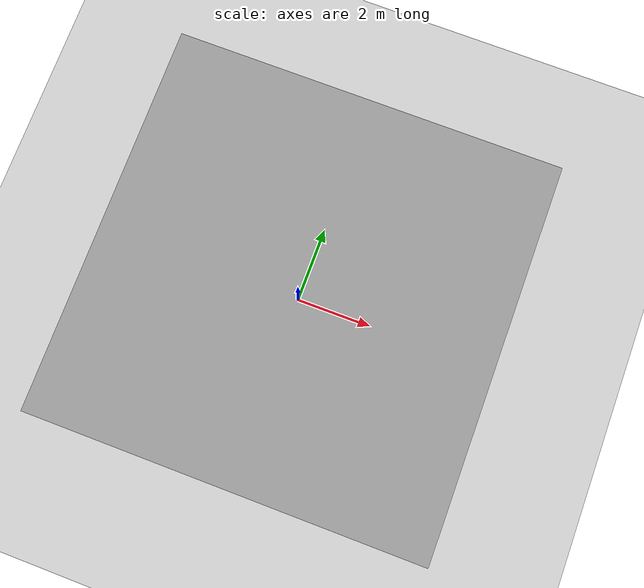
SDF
<?xml version="1.0" encoding="UTF-8"?>
<sdf version="1.9">
  <world name="ceiling">
    <physics type="ode">
      <max_step_size>0.004</max_step_size>
      <real_time_factor>1.0</real_time_factor>
      <real_time_update_rate>250</real_time_update_rate>
    </physics>
    <gravity>0 0 -9.8</gravity>
    <magnetic_field>6e-06 2.3e-05 -4.2e-05</magnetic_field>
    <atmosphere type="adiabatic"/>
    <scene>
      <grid>false</grid>
      <ambient>0.4 0.4 0.4 1</ambient>
      <background>0.7 0.7 0.7 1</background>
      <shadows>true</shadows>
    </scene>
    <model name="ground_plane">
      <static>true</static>
      <link name="link">
        <collision name="collision">
          <geometry>
            <plane>
              <normal>0 0 1</normal>
              <size>1 1</size>
            </plane>
          </geometry>
          <surface>
            <friction>
              <ode/>
            </friction>
            <bounce/>
            <contact/>
          </surface>
        </collision>
        <visual name="visual">
          <geometry>
            <plane>
              <normal>0 0 1</normal>
              <size>500 500</size>
            </plane>
          </geometry>
          <material>
            <ambient>0.8 0.8 0.8 1</ambient>
            <diffuse>0.8 0.8 0.8 1</diffuse>
            <specular>0.8 0.8 0.8 1</specular>
          </material>
        </visual>
        <pose>0 0 0 0 -0 0</pose>
        <inertial>
          <pose>0 0 0 0 -0 0</pose>
          <mass>1</mass>
          <inertia>
            <ixx>1</ixx>
            <ixy>0</ixy>
            <ixz>0</ixz>
            <iyy>1</iyy>
            <iyz>0</iyz>
            <izz>1</izz>
          </inertia>
        </inertial>
        <enable_wind>false</enable_wind>
      </link>
      <pose>0 0 0 0 -0 0</pose>
      <self_collide>false</self_collide>
    </model>

    <!-- 天花板：10×10×0.1 m，下表面落在 z=2.0，高摩擦 μ=0.9 供轮子贴顶移动 -->
    <model name="ceiling">
      <static>true</static>
      <link name="link">
        <collision name="collision">
          <geometry>
            <box>
              <size>10 10 0.1</size>
            </box>
          </geometry>
          <surface>
            <friction>
              <ode>
                <mu>0.9</mu>
                <mu2>0.9</mu2>
                <slip1>0.0</slip1>
                <slip2>0.0</slip2>
              </ode>
            </friction>
            <contact>
              <ode>
                <min_depth>0.001</min_depth>
                <max_vel>0</max_vel>
              </ode>
            </contact>
          </surface>
        </collision>
        <visual name="visual">
          <geometry>
            <box>
              <size>10 10 0.1</size>
            </box>
          </geometry>
          <material>
            <ambient>0.6 0.6 0.6 1</ambient>
            <diffuse>0.6 0.6 0.6 1</diffuse>
            <specular>0.2 0.2 0.2 1</specular>
          </material>
        </visual>
        <inertial>
          <mass>1000</mass>
          <inertia>
            <ixx>1</ixx>
            <ixy>0</ixy>
            <ixz>0</ixz>
            <iyy>1</iyy>
            <iyz>0</iyz>
            <izz>1</izz>
          </inertia>
        </inertial>
      </link>
      <pose>0 0 2.05 0 0 0</pose>
      <self_collide>false</self_collide>
    </model>

    <light name="sunUTC" type="directional">
      <pose>0 0 500 0 -0 0</pose>
      <cast_shadows>true</cast_shadows>
      <intensity>1</intensity>
      <direction>0.001 0.625 -0.78</direction>
      <diffuse>0.904 0.904 0.904 1</diffuse>
      <specular>0.271 0.271 0.271 1</specular>
      <attenuation>
        <range>2000</range>
        <linear>0</linear>
        <constant>1</constant>
        <quadratic>0</quadratic>
      </attenuation>
      <spot>
        <inner_angle>0</inner_angle>
        <outer_angle>0</outer_angle>
        <falloff>0</falloff>
      </spot>
    </light>
    <spherical_coordinates>
      <surface_model>EARTH_WGS84</surface_model>
      <world_frame_orientation>ENU</world_frame_orientation>
      <latitude_deg>47.397971057728974</latitude_deg>
      <longitude_deg> 8.546163739800146</longitude_deg>
      <elevation>0</elevation>
    </spherical_coordinates>
  </world>
</sdf>
